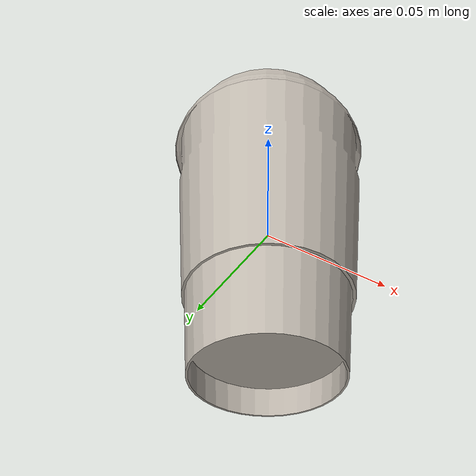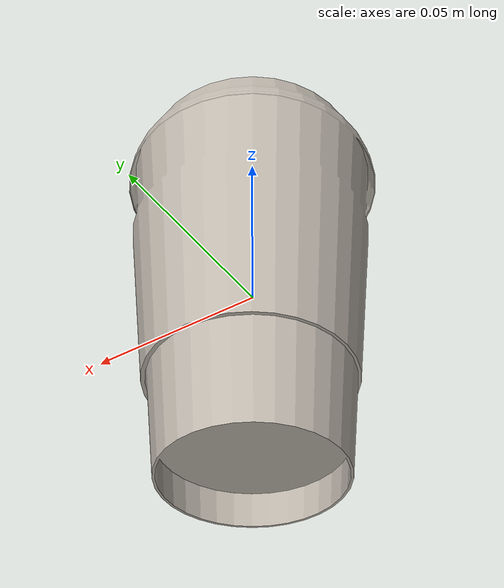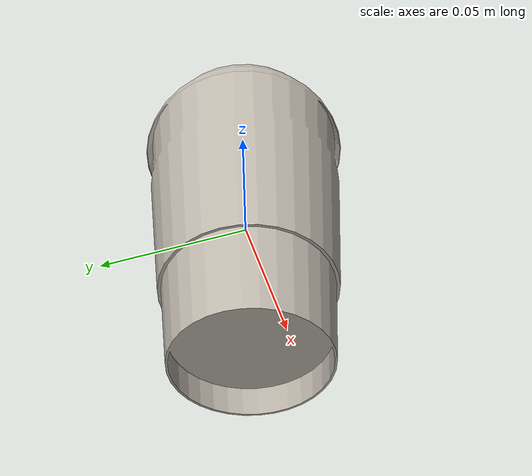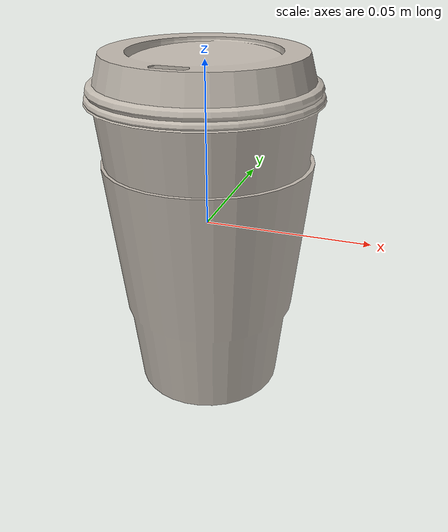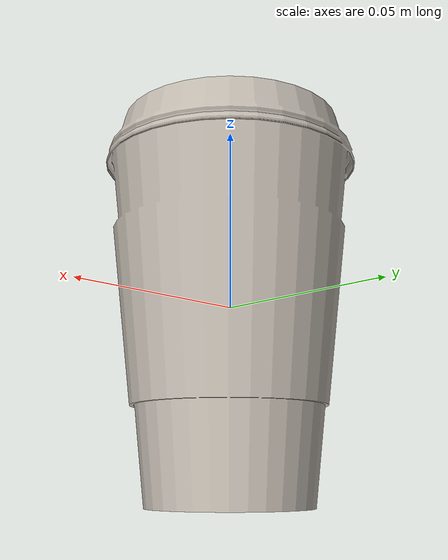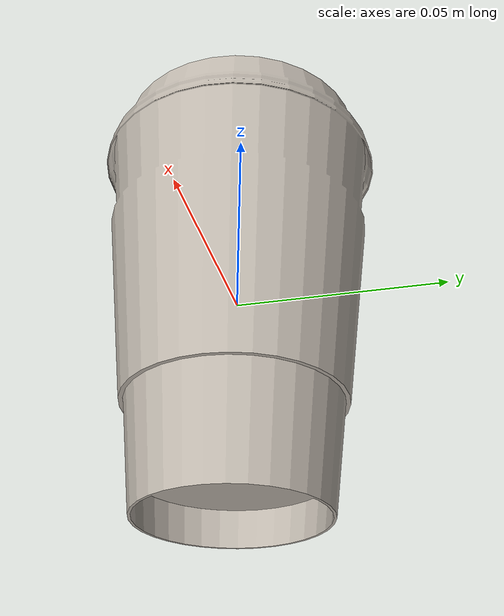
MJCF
<mujoco model="coffee_cup_32">
  <asset>
    <mesh file="visual/model_normalized_0.obj" name="model_normalized_0_vis" scale="0.10500000000000002 0.10500000000000002 0.10500000000000002" refquat="1.0000000000000004 0.0 0.0 0.0"/>
    <mesh file="collision/model_normalized_collision_22.obj" name="model_normalized_collision_22._coll" scale="0.10500000000000002 0.10500000000000002 0.10500000000000002" refquat="1.0000000000000004 0.0 0.0 0.0"/>
    <mesh file="collision/model_normalized_collision_23.obj" name="model_normalized_collision_23._coll" scale="0.10500000000000002 0.10500000000000002 0.10500000000000002" refquat="1.0000000000000004 0.0 0.0 0.0"/>
    <mesh file="collision/model_normalized_collision_21.obj" name="model_normalized_collision_21._coll" scale="0.10500000000000002 0.10500000000000002 0.10500000000000002" refquat="1.0000000000000004 0.0 0.0 0.0"/>
    <mesh file="collision/model_normalized_collision_20.obj" name="model_normalized_collision_20._coll" scale="0.10500000000000002 0.10500000000000002 0.10500000000000002" refquat="1.0000000000000004 0.0 0.0 0.0"/>
    <mesh file="collision/model_normalized_collision_24.obj" name="model_normalized_collision_24._coll" scale="0.10500000000000002 0.10500000000000002 0.10500000000000002" refquat="1.0000000000000004 0.0 0.0 0.0"/>
    <mesh file="collision/model_normalized_collision_30.obj" name="model_normalized_collision_30._coll" scale="0.10500000000000002 0.10500000000000002 0.10500000000000002" refquat="1.0000000000000004 0.0 0.0 0.0"/>
    <mesh file="collision/model_normalized_collision_18.obj" name="model_normalized_collision_18._coll" scale="0.10500000000000002 0.10500000000000002 0.10500000000000002" refquat="1.0000000000000004 0.0 0.0 0.0"/>
    <mesh file="collision/model_normalized_collision_19.obj" name="model_normalized_collision_19._coll" scale="0.10500000000000002 0.10500000000000002 0.10500000000000002" refquat="1.0000000000000004 0.0 0.0 0.0"/>
    <mesh file="collision/model_normalized_collision_31.obj" name="model_normalized_collision_31._coll" scale="0.10500000000000002 0.10500000000000002 0.10500000000000002" refquat="1.0000000000000004 0.0 0.0 0.0"/>
    <mesh file="collision/model_normalized_collision_25.obj" name="model_normalized_collision_25._coll" scale="0.10500000000000002 0.10500000000000002 0.10500000000000002" refquat="1.0000000000000004 0.0 0.0 0.0"/>
    <mesh file="collision/model_normalized_collision_27.obj" name="model_normalized_collision_27._coll" scale="0.10500000000000002 0.10500000000000002 0.10500000000000002" refquat="1.0000000000000004 0.0 0.0 0.0"/>
    <mesh file="collision/model_normalized_collision_26.obj" name="model_normalized_collision_26._coll" scale="0.10500000000000002 0.10500000000000002 0.10500000000000002" refquat="1.0000000000000004 0.0 0.0 0.0"/>
    <mesh file="collision/model_normalized_collision_9.obj" name="model_normalized_collision_9._coll" scale="0.10500000000000002 0.10500000000000002 0.10500000000000002" refquat="1.0000000000000004 0.0 0.0 0.0"/>
    <mesh file="collision/model_normalized_collision_8.obj" name="model_normalized_collision_8._coll" scale="0.10500000000000002 0.10500000000000002 0.10500000000000002" refquat="1.0000000000000004 0.0 0.0 0.0"/>
    <mesh file="collision/model_normalized_collision_6.obj" name="model_normalized_collision_6._coll" scale="0.10500000000000002 0.10500000000000002 0.10500000000000002" refquat="1.0000000000000004 0.0 0.0 0.0"/>
    <mesh file="collision/model_normalized_collision_7.obj" name="model_normalized_collision_7._coll" scale="0.10500000000000002 0.10500000000000002 0.10500000000000002" refquat="1.0000000000000004 0.0 0.0 0.0"/>
    <mesh file="collision/model_normalized_collision_5.obj" name="model_normalized_collision_5._coll" scale="0.10500000000000002 0.10500000000000002 0.10500000000000002" refquat="1.0000000000000004 0.0 0.0 0.0"/>
    <mesh file="collision/model_normalized_collision_4.obj" name="model_normalized_collision_4._coll" scale="0.10500000000000002 0.10500000000000002 0.10500000000000002" refquat="1.0000000000000004 0.0 0.0 0.0"/>
    <mesh file="collision/model_normalized_collision_0.obj" name="model_normalized_collision_0._coll" scale="0.10500000000000002 0.10500000000000002 0.10500000000000002" refquat="1.0000000000000004 0.0 0.0 0.0"/>
    <mesh file="collision/model_normalized_collision_1.obj" name="model_normalized_collision_1._coll" scale="0.10500000000000002 0.10500000000000002 0.10500000000000002" refquat="1.0000000000000004 0.0 0.0 0.0"/>
    <mesh file="collision/model_normalized_collision_3.obj" name="model_normalized_collision_3._coll" scale="0.10500000000000002 0.10500000000000002 0.10500000000000002" refquat="1.0000000000000004 0.0 0.0 0.0"/>
    <mesh file="collision/model_normalized_collision_2.obj" name="model_normalized_collision_2._coll" scale="0.10500000000000002 0.10500000000000002 0.10500000000000002" refquat="1.0000000000000004 0.0 0.0 0.0"/>
    <mesh file="collision/model_normalized_collision_17.obj" name="model_normalized_collision_17._coll" scale="0.10500000000000002 0.10500000000000002 0.10500000000000002" refquat="1.0000000000000004 0.0 0.0 0.0"/>
    <mesh file="collision/model_normalized_collision_16.obj" name="model_normalized_collision_16._coll" scale="0.10500000000000002 0.10500000000000002 0.10500000000000002" refquat="1.0000000000000004 0.0 0.0 0.0"/>
    <mesh file="collision/model_normalized_collision_28.obj" name="model_normalized_collision_28._coll" scale="0.10500000000000002 0.10500000000000002 0.10500000000000002" refquat="1.0000000000000004 0.0 0.0 0.0"/>
    <mesh file="collision/model_normalized_collision_14.obj" name="model_normalized_collision_14._coll" scale="0.10500000000000002 0.10500000000000002 0.10500000000000002" refquat="1.0000000000000004 0.0 0.0 0.0"/>
    <mesh file="collision/model_normalized_collision_15.obj" name="model_normalized_collision_15._coll" scale="0.10500000000000002 0.10500000000000002 0.10500000000000002" refquat="1.0000000000000004 0.0 0.0 0.0"/>
    <mesh file="collision/model_normalized_collision_29.obj" name="model_normalized_collision_29._coll" scale="0.10500000000000002 0.10500000000000002 0.10500000000000002" refquat="1.0000000000000004 0.0 0.0 0.0"/>
    <mesh file="collision/model_normalized_collision_11.obj" name="model_normalized_collision_11._coll" scale="0.10500000000000002 0.10500000000000002 0.10500000000000002" refquat="1.0000000000000004 0.0 0.0 0.0"/>
    <mesh file="collision/model_normalized_collision_10.obj" name="model_normalized_collision_10._coll" scale="0.10500000000000002 0.10500000000000002 0.10500000000000002" refquat="1.0000000000000004 0.0 0.0 0.0"/>
    <mesh file="collision/model_normalized_collision_12.obj" name="model_normalized_collision_12._coll" scale="0.10500000000000002 0.10500000000000002 0.10500000000000002" refquat="1.0000000000000004 0.0 0.0 0.0"/>
    <mesh file="collision/model_normalized_collision_13.obj" name="model_normalized_collision_13._coll" scale="0.10500000000000002 0.10500000000000002 0.10500000000000002" refquat="1.0000000000000004 0.0 0.0 0.0"/>
    <texture type="2d" name="image0" file="visual/image0.png"/>
    <material name="initialShadingGroup.004" texture="image0" specular="0.5" shininess="0.25"/>
  </asset>
  <worldbody>
    <body>
      <body name="object">
        <geom solimp="0.998 0.998 0.001" solref="0.001 1" density="100" friction="0.95 0.3 0.1" type="mesh" mesh="model_normalized_0_vis" conaffinity="0" contype="0" group="1" material="initialShadingGroup.004"/>
        <geom solimp="0.998 0.998 0.001" solref="0.001 1" density="100" friction="0.95 0.3 0.1" type="mesh" mesh="model_normalized_collision_22._coll" group="0" rgba="0.8 0.8 0.8 0.0"/>
        <geom solimp="0.998 0.998 0.001" solref="0.001 1" density="100" friction="0.95 0.3 0.1" type="mesh" mesh="model_normalized_collision_23._coll" group="0" rgba="0.8 0.8 0.8 0.0"/>
        <geom solimp="0.998 0.998 0.001" solref="0.001 1" density="100" friction="0.95 0.3 0.1" type="mesh" mesh="model_normalized_collision_21._coll" group="0" rgba="0.8 0.8 0.8 0.0"/>
        <geom solimp="0.998 0.998 0.001" solref="0.001 1" density="100" friction="0.95 0.3 0.1" type="mesh" mesh="model_normalized_collision_20._coll" group="0" rgba="0.8 0.8 0.8 0.0"/>
        <geom solimp="0.998 0.998 0.001" solref="0.001 1" density="100" friction="0.95 0.3 0.1" type="mesh" mesh="model_normalized_collision_24._coll" group="0" rgba="0.8 0.8 0.8 0.0"/>
        <geom solimp="0.998 0.998 0.001" solref="0.001 1" density="100" friction="0.95 0.3 0.1" type="mesh" mesh="model_normalized_collision_30._coll" group="0" rgba="0.8 0.8 0.8 0.0"/>
        <geom solimp="0.998 0.998 0.001" solref="0.001 1" density="100" friction="0.95 0.3 0.1" type="mesh" mesh="model_normalized_collision_18._coll" group="0" rgba="0.8 0.8 0.8 0.0"/>
        <geom solimp="0.998 0.998 0.001" solref="0.001 1" density="100" friction="0.95 0.3 0.1" type="mesh" mesh="model_normalized_collision_19._coll" group="0" rgba="0.8 0.8 0.8 0.0"/>
        <geom solimp="0.998 0.998 0.001" solref="0.001 1" density="100" friction="0.95 0.3 0.1" type="mesh" mesh="model_normalized_collision_31._coll" group="0" rgba="0.8 0.8 0.8 0.0"/>
        <geom solimp="0.998 0.998 0.001" solref="0.001 1" density="100" friction="0.95 0.3 0.1" type="mesh" mesh="model_normalized_collision_25._coll" group="0" rgba="0.8 0.8 0.8 0.0"/>
        <geom solimp="0.998 0.998 0.001" solref="0.001 1" density="100" friction="0.95 0.3 0.1" type="mesh" mesh="model_normalized_collision_27._coll" group="0" rgba="0.8 0.8 0.8 0.0"/>
        <geom solimp="0.998 0.998 0.001" solref="0.001 1" density="100" friction="0.95 0.3 0.1" type="mesh" mesh="model_normalized_collision_26._coll" group="0" rgba="0.8 0.8 0.8 0.0"/>
        <geom solimp="0.998 0.998 0.001" solref="0.001 1" density="100" friction="0.95 0.3 0.1" type="mesh" mesh="model_normalized_collision_9._coll" group="0" rgba="0.8 0.8 0.8 0.0"/>
        <geom solimp="0.998 0.998 0.001" solref="0.001 1" density="100" friction="0.95 0.3 0.1" type="mesh" mesh="model_normalized_collision_8._coll" group="0" rgba="0.8 0.8 0.8 0.0"/>
        <geom solimp="0.998 0.998 0.001" solref="0.001 1" density="100" friction="0.95 0.3 0.1" type="mesh" mesh="model_normalized_collision_6._coll" group="0" rgba="0.8 0.8 0.8 0.0"/>
        <geom solimp="0.998 0.998 0.001" solref="0.001 1" density="100" friction="0.95 0.3 0.1" type="mesh" mesh="model_normalized_collision_7._coll" group="0" rgba="0.8 0.8 0.8 0.0"/>
        <geom solimp="0.998 0.998 0.001" solref="0.001 1" density="100" friction="0.95 0.3 0.1" type="mesh" mesh="model_normalized_collision_5._coll" group="0" rgba="0.8 0.8 0.8 0.0"/>
        <geom solimp="0.998 0.998 0.001" solref="0.001 1" density="100" friction="0.95 0.3 0.1" type="mesh" mesh="model_normalized_collision_4._coll" group="0" rgba="0.8 0.8 0.8 0.0"/>
        <geom solimp="0.998 0.998 0.001" solref="0.001 1" density="100" friction="0.95 0.3 0.1" type="mesh" mesh="model_normalized_collision_0._coll" group="0" rgba="0.8 0.8 0.8 0.0"/>
        <geom solimp="0.998 0.998 0.001" solref="0.001 1" density="100" friction="0.95 0.3 0.1" type="mesh" mesh="model_normalized_collision_1._coll" group="0" rgba="0.8 0.8 0.8 0.0"/>
        <geom solimp="0.998 0.998 0.001" solref="0.001 1" density="100" friction="0.95 0.3 0.1" type="mesh" mesh="model_normalized_collision_3._coll" group="0" rgba="0.8 0.8 0.8 0.0"/>
        <geom solimp="0.998 0.998 0.001" solref="0.001 1" density="100" friction="0.95 0.3 0.1" type="mesh" mesh="model_normalized_collision_2._coll" group="0" rgba="0.8 0.8 0.8 0.0"/>
        <geom solimp="0.998 0.998 0.001" solref="0.001 1" density="100" friction="0.95 0.3 0.1" type="mesh" mesh="model_normalized_collision_17._coll" group="0" rgba="0.8 0.8 0.8 0.0"/>
        <geom solimp="0.998 0.998 0.001" solref="0.001 1" density="100" friction="0.95 0.3 0.1" type="mesh" mesh="model_normalized_collision_16._coll" group="0" rgba="0.8 0.8 0.8 0.0"/>
        <geom solimp="0.998 0.998 0.001" solref="0.001 1" density="100" friction="0.95 0.3 0.1" type="mesh" mesh="model_normalized_collision_28._coll" group="0" rgba="0.8 0.8 0.8 0.0"/>
        <geom solimp="0.998 0.998 0.001" solref="0.001 1" density="100" friction="0.95 0.3 0.1" type="mesh" mesh="model_normalized_collision_14._coll" group="0" rgba="0.8 0.8 0.8 0.0"/>
        <geom solimp="0.998 0.998 0.001" solref="0.001 1" density="100" friction="0.95 0.3 0.1" type="mesh" mesh="model_normalized_collision_15._coll" group="0" rgba="0.8 0.8 0.8 0.0"/>
        <geom solimp="0.998 0.998 0.001" solref="0.001 1" density="100" friction="0.95 0.3 0.1" type="mesh" mesh="model_normalized_collision_29._coll" group="0" rgba="0.8 0.8 0.8 0.0"/>
        <geom solimp="0.998 0.998 0.001" solref="0.001 1" density="100" friction="0.95 0.3 0.1" type="mesh" mesh="model_normalized_collision_11._coll" group="0" rgba="0.8 0.8 0.8 0.0"/>
        <geom solimp="0.998 0.998 0.001" solref="0.001 1" density="100" friction="0.95 0.3 0.1" type="mesh" mesh="model_normalized_collision_10._coll" group="0" rgba="0.8 0.8 0.8 0.0"/>
        <geom solimp="0.998 0.998 0.001" solref="0.001 1" density="100" friction="0.95 0.3 0.1" type="mesh" mesh="model_normalized_collision_12._coll" group="0" rgba="0.8 0.8 0.8 0.0"/>
        <geom solimp="0.998 0.998 0.001" solref="0.001 1" density="100" friction="0.95 0.3 0.1" type="mesh" mesh="model_normalized_collision_13._coll" group="0" rgba="0.8 0.8 0.8 0.0"/>
      </body>
      <site rgba="0 0 0 0" size="0.005" pos="-0.0001224074250000003 4.414199999999286e-06 -0.052500000000000005" name="bottom_site"/>
      <site rgba="0 0 0 0" size="0.005" pos="-0.0001224074250000003 4.414199999999286e-06 0.05250000105000001" name="top_site"/>
      <site rgba="0 0 0 0" size="0.005" pos="0.033468744750000015 0.0337135533 5.250000026379988e-10" name="horizontal_radius_site"/>
    </body>
  </worldbody>
</mujoco>
